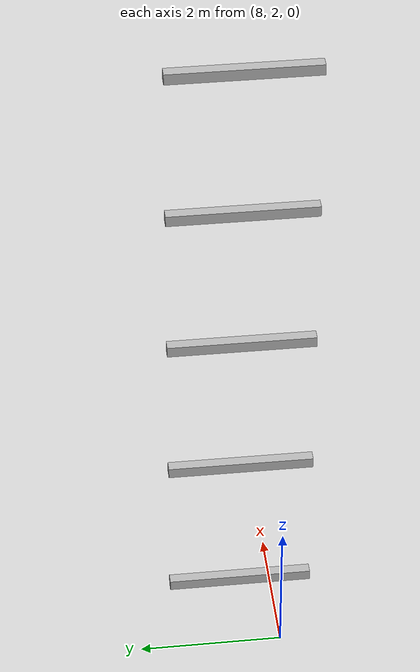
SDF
<sdf version="1.7">
 <world name="default">
  <model name="orthogonal_747_2.000.15_TS">
   <static>1</static>
   <link name="y_link_1_3_7">
    <inertial>
     <mass>1</mass>
     <inertia>
      <ixx>0.166667</ixx>
      <ixy>0</ixy>
      <ixz>0</ixz>
      <iyy>0.166667</iyy>
      <iyz>0</iyz>
      <izz>0.166667</izz>
     </inertia>
    </inertial>
    <pose>15.05 7.525 3.225 0 -0 0</pose>
    <visual name="visual_0">
     <laser_retro>1471</laser_retro>
     <geometry><box><size>0.15 1e-06 0.15</size></box></geometry>
     <material>
      <script><name>Gazebo/Grey</name><uri>file://media/materials/scripts/gazebo.material</uri></script>
      <shader type="pixel"><normal_map>__default__</normal_map></shader>
      <ambient>0.678 0.498 0.659 1</ambient>
      <diffuse>0.7 0.7 0.7 1</diffuse>
      <specular>0.01 0.01 0.01 1</specular>
      <emissive>0 0 0 1</emissive>
     </material>
     <pose>0 -1 0 0 -0 0</pose>
     <transparency>1</transparency>
    </visual>
    <visual name="visual_1">
     <laser_retro>1472</laser_retro>
     <geometry><box><size>0.15 1e-06 0.15</size></box></geometry>
     <material>
      <script><name>Gazebo/Grey</name><uri>file://media/materials/scripts/gazebo.material</uri></script>
      <shader type="pixel"><normal_map>__default__</normal_map></shader>
      <ambient>0.447 0.624 0.812 1</ambient>
      <diffuse>0.7 0.7 0.7 1</diffuse>
      <specular>0.01 0.01 0.01 1</specular>
      <emissive>0 0 0 1</emissive>
     </material>
     <pose>0 1 0 0 -0 0</pose>
     <transparency>1</transparency>
    </visual>
    <visual name="visual_2">
     <laser_retro>1473</laser_retro>
     <geometry><box><size>0.15 2 1e-06</size></box></geometry>
     <material>
      <script><name>Gazebo/Grey</name><uri>file://media/materials/scripts/gazebo.material</uri></script>
      <shader type="pixel"><normal_map>__default__</normal_map></shader>
      <ambient>0.988 0.686 0.243 1</ambient>
      <diffuse>0.7 0.7 0.7 1</diffuse>
      <specular>0.01 0.01 0.01 1</specular>
      <emissive>0 0 0 1</emissive>
     </material>
     <pose>0 0 -0.075 0 -0 0</pose>
     <transparency>1</transparency>
    </visual>
    <visual name="visual_3">
     <laser_retro>1474</laser_retro>
     <geometry><box><size>1e-06 2 0.15</size></box></geometry>
     <material>
      <script><name>Gazebo/Grey</name><uri>file://media/materials/scripts/gazebo.material</uri></script>
      <shader type="pixel"><normal_map>__default__</normal_map></shader>
      <ambient>0.988 0.914 0.31 1</ambient>
      <diffuse>0.7 0.7 0.7 1</diffuse>
      <specular>0.01 0.01 0.01 1</specular>
      <emissive>0 0 0 1</emissive>
     </material>
     <pose>0.075 0 0 0 -0 0</pose>
     <transparency>1</transparency>
    </visual>
    <visual name="visual_4">
     <laser_retro>1475</laser_retro>
     <geometry><box><size>0.15 2 1e-06</size></box></geometry>
     <material>
      <script><name>Gazebo/Grey</name><uri>file://media/materials/scripts/gazebo.material</uri></script>
      <shader type="pixel"><normal_map>__default__</normal_map></shader>
      <ambient>0.937 0.161 0.161 1</ambient>
      <diffuse>0.7 0.7 0.7 1</diffuse>
      <specular>0.01 0.01 0.01 1</specular>
      <emissive>0 0 0 1</emissive>
     </material>
     <pose>0 0 0.075 0 -0 0</pose>
     <transparency>1</transparency>
    </visual>
    <visual name="visual_5">
     <laser_retro>1476</laser_retro>
     <geometry><box><size>1e-06 2 0.15</size></box></geometry>
     <material>
      <script><name>Gazebo/Grey</name><uri>file://media/materials/scripts/gazebo.material</uri></script>
      <shader type="pixel"><normal_map>__default__</normal_map></shader>
      <ambient>0.541 0.886 0.204 1</ambient>
      <diffuse>0.7 0.7 0.7 1</diffuse>
      <specular>0.01 0.01 0.01 1</specular>
      <emissive>0 0 0 1</emissive>
     </material>
     <pose>-0.075 0 0 0 -0 0</pose>
     <transparency>1</transparency>
    </visual>
    <visual name="visual_texture">
     <geometry><box><size>0.149985 1.9998 0.149985</size></box></geometry>
     <material>
      <script>
       <uri>model://BASE_MODELS/simple_block_v2_textured/materials/scripts</uri>
       <uri>model://BASE_MODELS/simple_block_v2_textured/materials/textures</uri>
       <name>metal</name>
      </script>
     </material>
     <laser_retro>1477</laser_retro>
    </visual>
    <collision name="collision">
     <geometry><box><size>0.15 2 0.15</size></box></geometry>
     <surface>
      <friction>
       <ode><mu>1</mu><mu2>1</mu2><fdir1>0 0 0</fdir1><slip1>0</slip1><slip2>0</slip2></ode>
       <torsional>
        <coefficient>1</coefficient>
        <patch_radius>0</patch_radius>
        <surface_radius>0</surface_radius>
        <use_patch_radius>1</use_patch_radius>
        <ode><slip>0</slip></ode>
       </torsional>
      </friction>
      <bounce><restitution_coefficient>0</restitution_coefficient><threshold>1e+06</threshold></bounce>
      <contact>
       <collide_without_contact>0</collide_without_contact>
       <collide_without_contact_bitmask>1</collide_without_contact_bitmask>
       <collide_bitmask>1</collide_bitmask>
       <ode>
        <soft_cfm>0</soft_cfm>
        <soft_erp>0.2</soft_erp>
        <kp>1e+13</kp>
        <kd>1</kd>
        <max_vel>0.01</max_vel>
        <min_depth>0</min_depth>
       </ode>
       <bullet>
        <split_impulse>1</split_impulse>
        <split_impulse_penetration_threshold>-0.01</split_impulse_penetration_threshold>
        <soft_cfm>0</soft_cfm>
        <soft_erp>0.2</soft_erp>
        <kp>1e+13</kp>
        <kd>1</kd>
       </bullet>
      </contact>
     </surface>
    </collision>
   </link>
   <link name="y_link_2_3_7">
    <inertial>
     <mass>1</mass>
     <inertia>
      <ixx>0.166667</ixx>
      <ixy>0</ixy>
      <ixz>0</ixz>
      <iyy>0.166667</iyy>
      <iyz>0</iyz>
      <izz>0.166667</izz>
     </inertia>
    </inertial>
    <pose>15.05 7.525 5.375 0 -0 0</pose>
    <visual name="visual_0">
     <laser_retro>2374</laser_retro>
     <geometry><box><size>0.15 1e-06 0.15</size></box></geometry>
     <material>
      <script><name>Gazebo/Grey</name><uri>file://media/materials/scripts/gazebo.material</uri></script>
      <shader type="pixel"><normal_map>__default__</normal_map></shader>
      <ambient>0.678 0.498 0.659 1</ambient>
      <diffuse>0.7 0.7 0.7 1</diffuse>
      <specular>0.01 0.01 0.01 1</specular>
      <emissive>0 0 0 1</emissive>
     </material>
     <pose>0 -1 0 0 -0 0</pose>
     <transparency>1</transparency>
    </visual>
    <visual name="visual_1">
     <laser_retro>2375</laser_retro>
     <geometry><box><size>0.15 1e-06 0.15</size></box></geometry>
     <material>
      <script><name>Gazebo/Grey</name><uri>file://media/materials/scripts/gazebo.material</uri></script>
      <shader type="pixel"><normal_map>__default__</normal_map></shader>
      <ambient>0.447 0.624 0.812 1</ambient>
      <diffuse>0.7 0.7 0.7 1</diffuse>
      <specular>0.01 0.01 0.01 1</specular>
      <emissive>0 0 0 1</emissive>
     </material>
     <pose>0 1 0 0 -0 0</pose>
     <transparency>1</transparency>
    </visual>
    <visual name="visual_2">
     <laser_retro>2376</laser_retro>
     <geometry><box><size>0.15 2 1e-06</size></box></geometry>
     <material>
      <script><name>Gazebo/Grey</name><uri>file://media/materials/scripts/gazebo.material</uri></script>
      <shader type="pixel"><normal_map>__default__</normal_map></shader>
      <ambient>0.988 0.686 0.243 1</ambient>
      <diffuse>0.7 0.7 0.7 1</diffuse>
      <specular>0.01 0.01 0.01 1</specular>
      <emissive>0 0 0 1</emissive>
     </material>
     <pose>0 0 -0.075 0 -0 0</pose>
     <transparency>1</transparency>
    </visual>
    <visual name="visual_3">
     <laser_retro>2377</laser_retro>
     <geometry><box><size>1e-06 2 0.15</size></box></geometry>
     <material>
      <script><name>Gazebo/Grey</name><uri>file://media/materials/scripts/gazebo.material</uri></script>
      <shader type="pixel"><normal_map>__default__</normal_map></shader>
      <ambient>0.988 0.914 0.31 1</ambient>
      <diffuse>0.7 0.7 0.7 1</diffuse>
      <specular>0.01 0.01 0.01 1</specular>
      <emissive>0 0 0 1</emissive>
     </material>
     <pose>0.075 0 0 0 -0 0</pose>
     <transparency>1</transparency>
    </visual>
    <visual name="visual_4">
     <laser_retro>2378</laser_retro>
     <geometry><box><size>0.15 2 1e-06</size></box></geometry>
     <material>
      <script><name>Gazebo/Grey</name><uri>file://media/materials/scripts/gazebo.material</uri></script>
      <shader type="pixel"><normal_map>__default__</normal_map></shader>
      <ambient>0.937 0.161 0.161 1</ambient>
      <diffuse>0.7 0.7 0.7 1</diffuse>
      <specular>0.01 0.01 0.01 1</specular>
      <emissive>0 0 0 1</emissive>
     </material>
     <pose>0 0 0.075 0 -0 0</pose>
     <transparency>1</transparency>
    </visual>
    <visual name="visual_5">
     <laser_retro>2379</laser_retro>
     <geometry><box><size>1e-06 2 0.15</size></box></geometry>
     <material>
      <script><name>Gazebo/Grey</name><uri>file://media/materials/scripts/gazebo.material</uri></script>
      <shader type="pixel"><normal_map>__default__</normal_map></shader>
      <ambient>0.541 0.886 0.204 1</ambient>
      <diffuse>0.7 0.7 0.7 1</diffuse>
      <specular>0.01 0.01 0.01 1</specular>
      <emissive>0 0 0 1</emissive>
     </material>
     <pose>-0.075 0 0 0 -0 0</pose>
     <transparency>1</transparency>
    </visual>
    <visual name="visual_texture">
     <geometry><box><size>0.149985 1.9998 0.149985</size></box></geometry>
     <material>
      <script>
       <uri>model://BASE_MODELS/simple_block_v2_textured/materials/scripts</uri>
       <uri>model://BASE_MODELS/simple_block_v2_textured/materials/textures</uri>
       <name>metal</name>
      </script>
     </material>
     <laser_retro>2380</laser_retro>
    </visual>
    <collision name="collision">
     <geometry><box><size>0.15 2 0.15</size></box></geometry>
     <surface>
      <friction>
       <ode><mu>1</mu><mu2>1</mu2><fdir1>0 0 0</fdir1><slip1>0</slip1><slip2>0</slip2></ode>
       <torsional>
        <coefficient>1</coefficient>
        <patch_radius>0</patch_radius>
        <surface_radius>0</surface_radius>
        <use_patch_radius>1</use_patch_radius>
        <ode><slip>0</slip></ode>
       </torsional>
      </friction>
      <bounce><restitution_coefficient>0</restitution_coefficient><threshold>1e+06</threshold></bounce>
      <contact>
       <collide_without_contact>0</collide_without_contact>
       <collide_without_contact_bitmask>1</collide_without_contact_bitmask>
       <collide_bitmask>1</collide_bitmask>
       <ode>
        <soft_cfm>0</soft_cfm>
        <soft_erp>0.2</soft_erp>
        <kp>1e+13</kp>
        <kd>1</kd>
        <max_vel>0.01</max_vel>
        <min_depth>0</min_depth>
       </ode>
       <bullet>
        <split_impulse>1</split_impulse>
        <split_impulse_penetration_threshold>-0.01</split_impulse_penetration_threshold>
        <soft_cfm>0</soft_cfm>
        <soft_erp>0.2</soft_erp>
        <kp>1e+13</kp>
        <kd>1</kd>
       </bullet>
      </contact>
     </surface>
    </collision>
   </link>
   <link name="y_link_3_3_7">
    <inertial>
     <mass>1</mass>
     <inertia>
      <ixx>0.166667</ixx>
      <ixy>0</ixy>
      <ixz>0</ixz>
      <iyy>0.166667</iyy>
      <iyz>0</iyz>
      <izz>0.166667</izz>
     </inertia>
    </inertial>
    <pose>15.05 7.525 7.525 0 -0 0</pose>
    <visual name="visual_0">
     <laser_retro>3277</laser_retro>
     <geometry><box><size>0.15 1e-06 0.15</size></box></geometry>
     <material>
      <script><name>Gazebo/Grey</name><uri>file://media/materials/scripts/gazebo.material</uri></script>
      <shader type="pixel"><normal_map>__default__</normal_map></shader>
      <ambient>0.678 0.498 0.659 1</ambient>
      <diffuse>0.7 0.7 0.7 1</diffuse>
      <specular>0.01 0.01 0.01 1</specular>
      <emissive>0 0 0 1</emissive>
     </material>
     <pose>0 -1 0 0 -0 0</pose>
     <transparency>1</transparency>
    </visual>
    <visual name="visual_1">
     <laser_retro>3278</laser_retro>
     <geometry><box><size>0.15 1e-06 0.15</size></box></geometry>
     <material>
      <script><name>Gazebo/Grey</name><uri>file://media/materials/scripts/gazebo.material</uri></script>
      <shader type="pixel"><normal_map>__default__</normal_map></shader>
      <ambient>0.447 0.624 0.812 1</ambient>
      <diffuse>0.7 0.7 0.7 1</diffuse>
      <specular>0.01 0.01 0.01 1</specular>
      <emissive>0 0 0 1</emissive>
     </material>
     <pose>0 1 0 0 -0 0</pose>
     <transparency>1</transparency>
    </visual>
    <visual name="visual_2">
     <laser_retro>3279</laser_retro>
     <geometry><box><size>0.15 2 1e-06</size></box></geometry>
     <material>
      <script><name>Gazebo/Grey</name><uri>file://media/materials/scripts/gazebo.material</uri></script>
      <shader type="pixel"><normal_map>__default__</normal_map></shader>
      <ambient>0.988 0.686 0.243 1</ambient>
      <diffuse>0.7 0.7 0.7 1</diffuse>
      <specular>0.01 0.01 0.01 1</specular>
      <emissive>0 0 0 1</emissive>
     </material>
     <pose>0 0 -0.075 0 -0 0</pose>
     <transparency>1</transparency>
    </visual>
    <visual name="visual_3">
     <laser_retro>3280</laser_retro>
     <geometry><box><size>1e-06 2 0.15</size></box></geometry>
     <material>
      <script><name>Gazebo/Grey</name><uri>file://media/materials/scripts/gazebo.material</uri></script>
      <shader type="pixel"><normal_map>__default__</normal_map></shader>
      <ambient>0.988 0.914 0.31 1</ambient>
      <diffuse>0.7 0.7 0.7 1</diffuse>
      <specular>0.01 0.01 0.01 1</specular>
      <emissive>0 0 0 1</emissive>
     </material>
     <pose>0.075 0 0 0 -0 0</pose>
     <transparency>1</transparency>
    </visual>
    <visual name="visual_4">
     <laser_retro>3281</laser_retro>
     <geometry><box><size>0.15 2 1e-06</size></box></geometry>
     <material>
      <script><name>Gazebo/Grey</name><uri>file://media/materials/scripts/gazebo.material</uri></script>
      <shader type="pixel"><normal_map>__default__</normal_map></shader>
      <ambient>0.937 0.161 0.161 1</ambient>
      <diffuse>0.7 0.7 0.7 1</diffuse>
      <specular>0.01 0.01 0.01 1</specular>
      <emissive>0 0 0 1</emissive>
     </material>
     <pose>0 0 0.075 0 -0 0</pose>
     <transparency>1</transparency>
    </visual>
    <visual name="visual_5">
     <laser_retro>3282</laser_retro>
     <geometry><box><size>1e-06 2 0.15</size></box></geometry>
     <material>
      <script><name>Gazebo/Grey</name><uri>file://media/materials/scripts/gazebo.material</uri></script>
      <shader type="pixel"><normal_map>__default__</normal_map></shader>
      <ambient>0.541 0.886 0.204 1</ambient>
      <diffuse>0.7 0.7 0.7 1</diffuse>
      <specular>0.01 0.01 0.01 1</specular>
      <emissive>0 0 0 1</emissive>
     </material>
     <pose>-0.075 0 0 0 -0 0</pose>
     <transparency>1</transparency>
    </visual>
    <visual name="visual_texture">
     <geometry><box><size>0.149985 1.9998 0.149985</size></box></geometry>
     <material>
      <script>
       <uri>model://BASE_MODELS/simple_block_v2_textured/materials/scripts</uri>
       <uri>model://BASE_MODELS/simple_block_v2_textured/materials/textures</uri>
       <name>metal</name>
      </script>
     </material>
     <laser_retro>3283</laser_retro>
    </visual>
    <collision name="collision">
     <geometry><box><size>0.15 2 0.15</size></box></geometry>
     <surface>
      <friction>
       <ode><mu>1</mu><mu2>1</mu2><fdir1>0 0 0</fdir1><slip1>0</slip1><slip2>0</slip2></ode>
       <torsional>
        <coefficient>1</coefficient>
        <patch_radius>0</patch_radius>
        <surface_radius>0</surface_radius>
        <use_patch_radius>1</use_patch_radius>
        <ode><slip>0</slip></ode>
       </torsional>
      </friction>
      <bounce><restitution_coefficient>0</restitution_coefficient><threshold>1e+06</threshold></bounce>
      <contact>
       <collide_without_contact>0</collide_without_contact>
       <collide_without_contact_bitmask>1</collide_without_contact_bitmask>
       <collide_bitmask>1</collide_bitmask>
       <ode>
        <soft_cfm>0</soft_cfm>
        <soft_erp>0.2</soft_erp>
        <kp>1e+13</kp>
        <kd>1</kd>
        <max_vel>0.01</max_vel>
        <min_depth>0</min_depth>
       </ode>
       <bullet>
        <split_impulse>1</split_impulse>
        <split_impulse_penetration_threshold>-0.01</split_impulse_penetration_threshold>
        <soft_cfm>0</soft_cfm>
        <soft_erp>0.2</soft_erp>
        <kp>1e+13</kp>
        <kd>1</kd>
       </bullet>
      </contact>
     </surface>
    </collision>
   </link>
   <link name="y_link_4_3_7">
    <inertial>
     <mass>1</mass>
     <inertia>
      <ixx>0.166667</ixx>
      <ixy>0</ixy>
      <ixz>0</ixz>
      <iyy>0.166667</iyy>
      <iyz>0</iyz>
      <izz>0.166667</izz>
     </inertia>
    </inertial>
    <pose>15.05 7.525 9.675 0 -0 0</pose>
    <visual name="visual_0">
     <laser_retro>4180</laser_retro>
     <geometry><box><size>0.15 1e-06 0.15</size></box></geometry>
     <material>
      <script><name>Gazebo/Grey</name><uri>file://media/materials/scripts/gazebo.material</uri></script>
      <shader type="pixel"><normal_map>__default__</normal_map></shader>
      <ambient>0.678 0.498 0.659 1</ambient>
      <diffuse>0.7 0.7 0.7 1</diffuse>
      <specular>0.01 0.01 0.01 1</specular>
      <emissive>0 0 0 1</emissive>
     </material>
     <pose>0 -1 0 0 -0 0</pose>
     <transparency>1</transparency>
    </visual>
    <visual name="visual_1">
     <laser_retro>4181</laser_retro>
     <geometry><box><size>0.15 1e-06 0.15</size></box></geometry>
     <material>
      <script><name>Gazebo/Grey</name><uri>file://media/materials/scripts/gazebo.material</uri></script>
      <shader type="pixel"><normal_map>__default__</normal_map></shader>
      <ambient>0.447 0.624 0.812 1</ambient>
      <diffuse>0.7 0.7 0.7 1</diffuse>
      <specular>0.01 0.01 0.01 1</specular>
      <emissive>0 0 0 1</emissive>
     </material>
     <pose>0 1 0 0 -0 0</pose>
     <transparency>1</transparency>
    </visual>
    <visual name="visual_2">
     <laser_retro>4182</laser_retro>
     <geometry><box><size>0.15 2 1e-06</size></box></geometry>
     <material>
      <script><name>Gazebo/Grey</name><uri>file://media/materials/scripts/gazebo.material</uri></script>
      <shader type="pixel"><normal_map>__default__</normal_map></shader>
      <ambient>0.988 0.686 0.243 1</ambient>
      <diffuse>0.7 0.7 0.7 1</diffuse>
      <specular>0.01 0.01 0.01 1</specular>
      <emissive>0 0 0 1</emissive>
     </material>
     <pose>0 0 -0.075 0 -0 0</pose>
     <transparency>1</transparency>
    </visual>
    <visual name="visual_3">
     <laser_retro>4183</laser_retro>
     <geometry><box><size>1e-06 2 0.15</size></box></geometry>
     <material>
      <script><name>Gazebo/Grey</name><uri>file://media/materials/scripts/gazebo.material</uri></script>
      <shader type="pixel"><normal_map>__default__</normal_map></shader>
      <ambient>0.988 0.914 0.31 1</ambient>
      <diffuse>0.7 0.7 0.7 1</diffuse>
      <specular>0.01 0.01 0.01 1</specular>
      <emissive>0 0 0 1</emissive>
     </material>
     <pose>0.075 0 0 0 -0 0</pose>
     <transparency>1</transparency>
    </visual>
    <visual name="visual_4">
     <laser_retro>4184</laser_retro>
     <geometry><box><size>0.15 2 1e-06</size></box></geometry>
     <material>
      <script><name>Gazebo/Grey</name><uri>file://media/materials/scripts/gazebo.material</uri></script>
      <shader type="pixel"><normal_map>__default__</normal_map></shader>
      <ambient>0.937 0.161 0.161 1</ambient>
      <diffuse>0.7 0.7 0.7 1</diffuse>
      <specular>0.01 0.01 0.01 1</specular>
      <emissive>0 0 0 1</emissive>
     </material>
     <pose>0 0 0.075 0 -0 0</pose>
     <transparency>1</transparency>
    </visual>
    <visual name="visual_5">
     <laser_retro>4185</laser_retro>
     <geometry><box><size>1e-06 2 0.15</size></box></geometry>
     <material>
      <script><name>Gazebo/Grey</name><uri>file://media/materials/scripts/gazebo.material</uri></script>
      <shader type="pixel"><normal_map>__default__</normal_map></shader>
      <ambient>0.541 0.886 0.204 1</ambient>
      <diffuse>0.7 0.7 0.7 1</diffuse>
      <specular>0.01 0.01 0.01 1</specular>
      <emissive>0 0 0 1</emissive>
     </material>
     <pose>-0.075 0 0 0 -0 0</pose>
     <transparency>1</transparency>
    </visual>
    <visual name="visual_texture">
     <geometry><box><size>0.149985 1.9998 0.149985</size></box></geometry>
     <material>
      <script>
       <uri>model://BASE_MODELS/simple_block_v2_textured/materials/scripts</uri>
       <uri>model://BASE_MODELS/simple_block_v2_textured/materials/textures</uri>
       <name>metal</name>
      </script>
     </material>
     <laser_retro>4186</laser_retro>
    </visual>
    <collision name="collision">
     <geometry><box><size>0.15 2 0.15</size></box></geometry>
     <surface>
      <friction>
       <ode><mu>1</mu><mu2>1</mu2><fdir1>0 0 0</fdir1><slip1>0</slip1><slip2>0</slip2></ode>
       <torsional>
        <coefficient>1</coefficient>
        <patch_radius>0</patch_radius>
        <surface_radius>0</surface_radius>
        <use_patch_radius>1</use_patch_radius>
        <ode><slip>0</slip></ode>
       </torsional>
      </friction>
      <bounce><restitution_coefficient>0</restitution_coefficient><threshold>1e+06</threshold></bounce>
      <contact>
       <collide_without_contact>0</collide_without_contact>
       <collide_without_contact_bitmask>1</collide_without_contact_bitmask>
       <collide_bitmask>1</collide_bitmask>
       <ode>
        <soft_cfm>0</soft_cfm>
        <soft_erp>0.2</soft_erp>
        <kp>1e+13</kp>
        <kd>1</kd>
        <max_vel>0.01</max_vel>
        <min_depth>0</min_depth>
       </ode>
       <bullet>
        <split_impulse>1</split_impulse>
        <split_impulse_penetration_threshold>-0.01</split_impulse_penetration_threshold>
        <soft_cfm>0</soft_cfm>
        <soft_erp>0.2</soft_erp>
        <kp>1e+13</kp>
        <kd>1</kd>
       </bullet>
      </contact>
     </surface>
    </collision>
   </link>
   <link name="y_link_5_3_7">
    <inertial>
     <mass>1</mass>
     <inertia>
      <ixx>0.166667</ixx>
      <ixy>0</ixy>
      <ixz>0</ixz>
      <iyy>0.166667</iyy>
      <iyz>0</iyz>
      <izz>0.166667</izz>
     </inertia>
    </inertial>
    <pose>15.05 7.525 11.825 0 -0 0</pose>
    <visual name="visual_0">
     <laser_retro>5083</laser_retro>
     <geometry><box><size>0.15 1e-06 0.15</size></box></geometry>
     <material>
      <script><name>Gazebo/Grey</name><uri>file://media/materials/scripts/gazebo.material</uri></script>
      <shader type="pixel"><normal_map>__default__</normal_map></shader>
      <ambient>0.678 0.498 0.659 1</ambient>
      <diffuse>0.7 0.7 0.7 1</diffuse>
      <specular>0.01 0.01 0.01 1</specular>
      <emissive>0 0 0 1</emissive>
     </material>
     <pose>0 -1 0 0 -0 0</pose>
     <transparency>1</transparency>
    </visual>
    <visual name="visual_1">
     <laser_retro>5084</laser_retro>
     <geometry><box><size>0.15 1e-06 0.15</size></box></geometry>
     <material>
      <script><name>Gazebo/Grey</name><uri>file://media/materials/scripts/gazebo.material</uri></script>
      <shader type="pixel"><normal_map>__default__</normal_map></shader>
      <ambient>0.447 0.624 0.812 1</ambient>
      <diffuse>0.7 0.7 0.7 1</diffuse>
      <specular>0.01 0.01 0.01 1</specular>
      <emissive>0 0 0 1</emissive>
     </material>
     <pose>0 1 0 0 -0 0</pose>
     <transparency>1</transparency>
    </visual>
    <visual name="visual_2">
     <laser_retro>5085</laser_retro>
     <geometry><box><size>0.15 2 1e-06</size></box></geometry>
     <material>
      <script><name>Gazebo/Grey</name><uri>file://media/materials/scripts/gazebo.material</uri></script>
      <shader type="pixel"><normal_map>__default__</normal_map></shader>
      <ambient>0.988 0.686 0.243 1</ambient>
      <diffuse>0.7 0.7 0.7 1</diffuse>
      <specular>0.01 0.01 0.01 1</specular>
      <emissive>0 0 0 1</emissive>
     </material>
     <pose>0 0 -0.075 0 -0 0</pose>
     <transparency>1</transparency>
    </visual>
    <visual name="visual_3">
     <laser_retro>5086</laser_retro>
     <geometry><box><size>1e-06 2 0.15</size></box></geometry>
     <material>
      <script><name>Gazebo/Grey</name><uri>file://media/materials/scripts/gazebo.material</uri></script>
      <shader type="pixel"><normal_map>__default__</normal_map></shader>
      <ambient>0.988 0.914 0.31 1</ambient>
      <diffuse>0.7 0.7 0.7 1</diffuse>
      <specular>0.01 0.01 0.01 1</specular>
      <emissive>0 0 0 1</emissive>
     </material>
     <pose>0.075 0 0 0 -0 0</pose>
     <transparency>1</transparency>
    </visual>
    <visual name="visual_4">
     <laser_retro>5087</laser_retro>
     <geometry><box><size>0.15 2 1e-06</size></box></geometry>
     <material>
      <script><name>Gazebo/Grey</name><uri>file://media/materials/scripts/gazebo.material</uri></script>
      <shader type="pixel"><normal_map>__default__</normal_map></shader>
      <ambient>0.937 0.161 0.161 1</ambient>
      <diffuse>0.7 0.7 0.7 1</diffuse>
      <specular>0.01 0.01 0.01 1</specular>
      <emissive>0 0 0 1</emissive>
     </material>
     <pose>0 0 0.075 0 -0 0</pose>
     <transparency>1</transparency>
    </visual>
    <visual name="visual_5">
     <laser_retro>5088</laser_retro>
     <geometry><box><size>1e-06 2 0.15</size></box></geometry>
     <material>
      <script><name>Gazebo/Grey</name><uri>file://media/materials/scripts/gazebo.material</uri></script>
      <shader type="pixel"><normal_map>__default__</normal_map></shader>
      <ambient>0.541 0.886 0.204 1</ambient>
      <diffuse>0.7 0.7 0.7 1</diffuse>
      <specular>0.01 0.01 0.01 1</specular>
      <emissive>0 0 0 1</emissive>
     </material>
     <pose>-0.075 0 0 0 -0 0</pose>
     <transparency>1</transparency>
    </visual>
    <visual name="visual_texture">
     <geometry><box><size>0.149985 1.9998 0.149985</size></box></geometry>
     <material>
      <script>
       <uri>model://BASE_MODELS/simple_block_v2_textured/materials/scripts</uri>
       <uri>model://BASE_MODELS/simple_block_v2_textured/materials/textures</uri>
       <name>metal</name>
      </script>
     </material>
     <laser_retro>5089</laser_retro>
    </visual>
    <collision name="collision">
     <geometry><box><size>0.15 2 0.15</size></box></geometry>
     <surface>
      <friction>
       <ode><mu>1</mu><mu2>1</mu2><fdir1>0 0 0</fdir1><slip1>0</slip1><slip2>0</slip2></ode>
       <torsional>
        <coefficient>1</coefficient>
        <patch_radius>0</patch_radius>
        <surface_radius>0</surface_radius>
        <use_patch_radius>1</use_patch_radius>
        <ode><slip>0</slip></ode>
       </torsional>
      </friction>
      <bounce><restitution_coefficient>0</restitution_coefficient><threshold>1e+06</threshold></bounce>
      <contact>
       <collide_without_contact>0</collide_without_contact>
       <collide_without_contact_bitmask>1</collide_without_contact_bitmask>
       <collide_bitmask>1</collide_bitmask>
       <ode>
        <soft_cfm>0</soft_cfm>
        <soft_erp>0.2</soft_erp>
        <kp>1e+13</kp>
        <kd>1</kd>
        <max_vel>0.01</max_vel>
        <min_depth>0</min_depth>
       </ode>
       <bullet>
        <split_impulse>1</split_impulse>
        <split_impulse_penetration_threshold>-0.01</split_impulse_penetration_threshold>
        <soft_cfm>0</soft_cfm>
        <soft_erp>0.2</soft_erp>
        <kp>1e+13</kp>
        <kd>1</kd>
       </bullet>
      </contact>
     </surface>
    </collision>
   </link>
   <pose>-6.47624 -5 -2.5 0 -0 0</pose>
  </model>
 </world>
</sdf>
